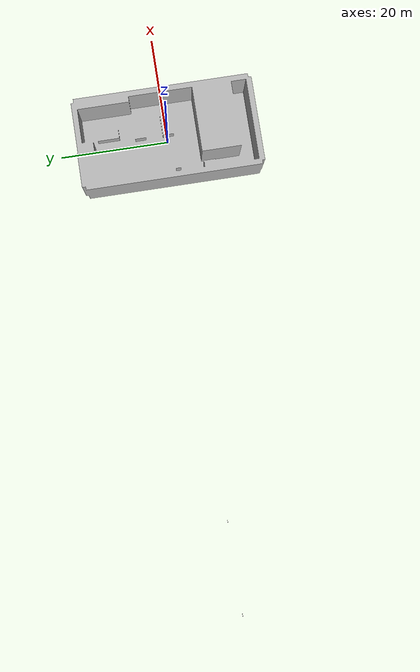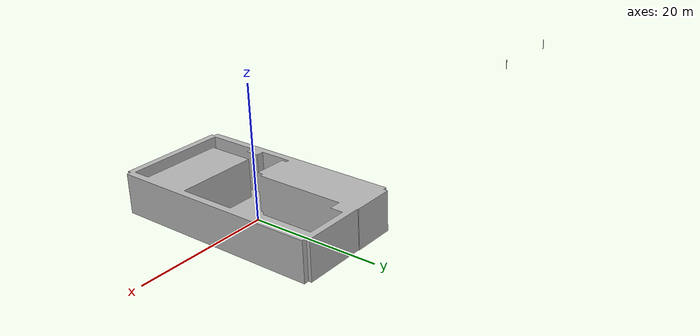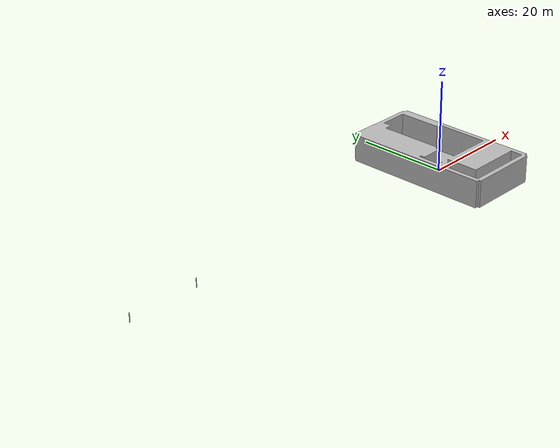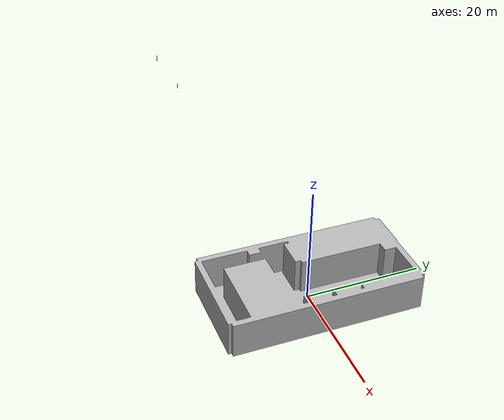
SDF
<?xml version="1.0" ?>
<sdf version="1.8">
  <world name="obj_model_world_absolute">
    <model name="academy_model">
      <static>true</static>
      <link name="link">
        <visual name="visual">
          <geometry>
            <mesh>
              <uri>file:///home/lee/final_project/simulation/academy_building/meshes/academy.obj</uri>
              <scale>1 1 1</scale>
            </mesh>
          </geometry>
        </visual>
        <collision name="collision">
          <geometry>
            <mesh>
              <uri>file:///home/lee/final_project/simulation/academy_building/meshes/academy.obj</uri>
              <scale>1 1 1</scale>
            </mesh>
          </geometry>
        </collision>
      </link>
    </model>
  </world>
</sdf>
